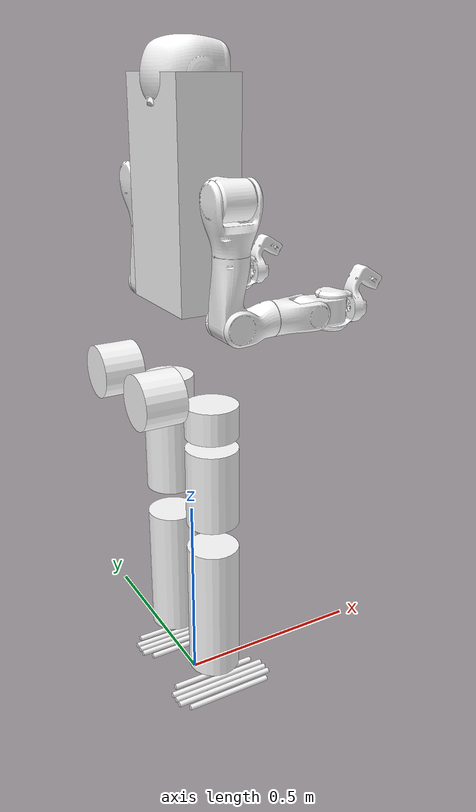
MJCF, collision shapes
<mujoco model="LingLong_L1_V1.4">
  <!-- Generated from the version-matched URDF with MuJoCo 3.4.0, then supplemented for the SDK runtime. -->
  <compiler angle="radian" meshdir="../meshes/"/>

  <!-- Runtime control periods are configured by the application YAML. -->
  <option timestep="0.001"/>

  <!--
    Joint armatures match the installed motor models. Foot-contact parameters
    remain aligned with the training model, and actuator force limits match
    config/linglong_hardware.yaml.
  -->

  <default>
    <geom group="3"/>
  </default>

  <asset>
    <mesh name="base_link" file="base_link.stl"/>
    <mesh name="left_hip_pitch_link" file="left_hip_pitch_link.STL"/>
    <mesh name="left_hip_roll_link" file="left_hip_roll_link.STL"/>
    <mesh name="left_hip_yaw_link" file="left_hip_yaw_link.STL"/>
    <mesh name="left_knee_link" file="left_knee_link.STL"/>
    <mesh name="left_ankle_pitch_link" file="left_ankle_pitch_link.STL"/>
    <mesh name="left_ankle_roll_link" file="left_ankle_roll_link.STL"/>
    <mesh name="right_hip_pitch_link" file="right_hip_pitch_link.STL"/>
    <mesh name="right_hip_roll_link" file="right_hip_roll_link.STL"/>
    <mesh name="right_hip_yaw_link" file="right_hip_yaw_link.STL"/>
    <mesh name="right_knee_link" file="right_knee_link.STL"/>
    <mesh name="right_ankle_pitch_link" file="right_ankle_pitch_link.STL"/>
    <mesh name="right_ankle_roll_link" file="right_ankle_roll_link.STL"/>
    <mesh name="head_yaw_link" content_type="model/stl" file="head_yaw_link.STL"/>
    <mesh name="head_pitch_link" file="head_pitch_link.STL"/>
    <mesh name="left_shoulder_pitch_link" content_type="model/stl" file="left_shoulder_pitch_link.STL"/>
    <mesh name="left_shoulder_roll_link" content_type="model/stl" file="left_shoulder_roll_link.STL"/>
    <mesh name="left_shoulder_yaw_link" content_type="model/stl" file="left_shoulder_yaw_link.STL"/>
    <mesh name="left_elbow_link" content_type="model/stl" file="left_elbow_link.STL"/>
    <mesh name="left_wrist_roll_link" content_type="model/stl" file="left_wrist_roll_link.STL"/>
    <mesh name="left_wrist_pitch_link" content_type="model/stl" file="left_wrist_pitch_link.STL"/>
    <mesh name="left_wrist_yaw_link" content_type="model/stl" file="left_wrist_yaw_link.STL"/>
    <mesh name="right_shoulder_pitch_link" content_type="model/stl" file="right_shoulder_pitch_link.STL"/>
    <mesh name="right_shoulder_roll_link" content_type="model/stl" file="right_shoulder_roll_link.STL"/>
    <mesh name="right_shoulder_yaw_link" content_type="model/stl" file="right_shoulder_yaw_link.STL"/>
    <mesh name="right_elbow_link" content_type="model/stl" file="right_elbow_link.STL"/>
    <mesh name="right_wrist_roll_link" content_type="model/stl" file="right_wrist_roll_link.STL"/>
    <mesh name="right_wrist_pitch_link" content_type="model/stl" file="right_wrist_pitch_link.STL"/>
    <mesh name="right_wrist_yaw_link" content_type="model/stl" file="right_wrist_yaw_link.STL"/>
  </asset>

  <worldbody>
    <body name="base_link" pos="0 0 1.0">
      <inertial pos="-0.004943 0.003037 0.104651" quat="0.999889 -0.000412984 -0.0138862 -0.0053236" mass="20.6804" diaginertia="0.651816 0.509434 0.232097"/>
      <joint name="floating_base_joint" type="free"/>
      <geom type="mesh" contype="0" conaffinity="0" group="1" density="0" rgba="1 1 1 1" mesh="base_link"/>
      <geom size="0.075 0.125 0.25" pos="0 0 0.3" type="box" rgba="1 1 1 1"/>
      <body name="left_hip_pitch_link" pos="0 0.11655 -0.077">
        <inertial pos="-0.084164 0.017857 -0.033361" quat="0.598881 0.223776 0.593448 0.488963" mass="2.80157" diaginertia="0.0184164 0.0164788 0.00698685"/>
        <joint name="left_hip_pitch_joint" pos="0 0 0" axis="0 1 0" range="-1.5708 0.785398" actuatorfrcrange="-330 330" armature="0.125601507333"/>
        <geom type="mesh" contype="0" conaffinity="0" group="1" density="0" rgba="1 1 1 1" mesh="left_hip_pitch_link"/>
        <geom size="0.065 0.05" pos="-0.14 0 -0.05" quat="0.707388 0 0.706825 0" type="cylinder" rgba="1 1 1 1"/>
        <body name="left_hip_roll_link" pos="0 0 -0.05">
          <inertial pos="-0.002128 -7.9e-05 -0.088996" quat="0.450855 0.545899 0.52601 0.471208" mass="2.0916" diaginertia="0.00765753 0.00735295 0.00392751"/>
          <joint name="left_hip_roll_joint" pos="0 0 0" axis="1 0 0" range="-0.349066 0.785398" actuatorfrcrange="-150 150" armature="0.127606"/>
          <geom type="mesh" contype="0" conaffinity="0" group="1" density="0" rgba="1 1 1 1" mesh="left_hip_roll_link"/>
          <geom size="0.065 0.04" pos="0 0 -0.08" type="cylinder" rgba="1 1 1 1"/>
          <body name="left_hip_yaw_link">
            <inertial pos="0.003857 -0.00632 -0.285854" quat="0.724164 -0.0100522 0.0138246 0.689416" mass="3.91508" diaginertia="0.0368522 0.036 0.00846585"/>
            <joint name="left_hip_yaw_joint" pos="0 0 0" axis="0 0 1" range="-2.0944 2.13803" actuatorfrcrange="-130 130" armature="0.062599"/>
            <geom type="mesh" contype="0" conaffinity="0" group="1" density="0" rgba="1 1 1 1" mesh="left_hip_yaw_link"/>
            <geom size="0.065 0.1" pos="0 0 -0.25" type="cylinder" rgba="1 1 1 1"/>
            <body name="left_knee_link" pos="0 0 -0.364">
              <inertial pos="0.002587 -0.000876 -0.181945" quat="0.704682 0.0194667 -0.0213112 0.708935" mass="4.14246" diaginertia="0.047775 0.0463692 0.00748385"/>
              <joint name="left_knee_joint" pos="0 0 0" axis="0 1 0" range="-0.174533 1.90241" actuatorfrcrange="-150 150" armature="0.1606514"/>
              <geom type="mesh" contype="0" conaffinity="0" group="1" density="0" rgba="1 1 1 1" mesh="left_knee_link"/>
              <geom size="0.065 0.175" pos="0 0 -0.24" type="cylinder" rgba="1 1 1 1"/>
              <body name="left_ankle_pitch_link" pos="0 0 -0.42">
                <inertial pos="-0.000216 0 0" quat="0 0.707107 0 0.707107" mass="0.139668" diaginertia="5.6e-05 3.1e-05 2.9e-05"/>
                <joint name="left_ankle_pitch_joint" pos="0 0 0" axis="0 1 0" range="-0.802851 0.602139" actuatorfrcrange="-90 90" armature="0.037744539344"/>
                <geom type="mesh" contype="0" conaffinity="0" group="1" density="0" rgba="1 1 1 1" mesh="left_ankle_pitch_link"/>
                <body name="left_ankle_roll_link">
                  <inertial pos="0.008646 4.5e-05 -0.044395" quat="-0.000247978 0.725518 2.51124e-05 0.688203" mass="1.10301" diaginertia="0.00639506 0.006049 0.000984944"/>
                  <joint name="left_ankle_roll_joint" pos="0 0 0" axis="1 0 0" range="-0.523599 0.523599" actuatorfrcrange="-90 90" armature="0.037744539344"/>
                  <geom type="mesh" contype="0" conaffinity="0" group="1" density="0" rgba="1 1 1 1" mesh="left_ankle_roll_link"/>
                  <geom name="left_foot1_collision" size="0.007 0.135" pos="0.02 0 -0.07" quat="0.707105 0 -0.707108 0" type="cylinder" rgba="1 1 1 1" condim="3" priority="1" friction="0.6 0.005 0.0001"/>
                  <geom name="left_foot2_collision" size="0.007 0.115" pos="0.02 -0.044 -0.07" quat="0.707105 0 -0.707108 0" type="cylinder" rgba="1 1 1 1" condim="3" priority="1" friction="0.6 0.005 0.0001"/>
                  <geom name="left_foot3_collision" size="0.007 0.115" pos="0.02 0.044 -0.07" quat="0.707105 0 -0.707108 0" type="cylinder" rgba="1 1 1 1" condim="3" priority="1" friction="0.6 0.005 0.0001"/>
                  <geom name="left_foot4_collision" size="0.007 0.135" pos="0.02 -0.02 -0.07" quat="0.707105 0 -0.707108 0" type="cylinder" rgba="1 1 1 1" condim="3" priority="1" friction="0.6 0.005 0.0001"/>
                  <geom name="left_foot5_collision" size="0.007 0.135" pos="0.02 0.02 -0.07" quat="0.707105 0 -0.707108 0" type="cylinder" rgba="1 1 1 1" condim="3" priority="1" friction="0.6 0.005 0.0001"/>
                </body>
              </body>
            </body>
          </body>
        </body>
      </body>
      <body name="right_hip_pitch_link" pos="0 -0.11655 -0.077">
        <inertial pos="-0.084164 -0.017857 -0.033361" quat="0.488963 0.593448 0.223776 0.598881" mass="2.80157" diaginertia="0.0184164 0.0164788 0.00698685"/>
        <joint name="right_hip_pitch_joint" pos="0 0 0" axis="0 1 0" range="-1.5708 0.785398" actuatorfrcrange="-330 330" armature="0.125601507333"/>
        <geom type="mesh" contype="0" conaffinity="0" group="1" density="0" rgba="1 1 1 1" mesh="right_hip_pitch_link"/>
        <geom size="0.065 0.05" pos="-0.14 0 -0.05" quat="0.707388 0 0.706825 0" type="cylinder" rgba="1 1 1 1"/>
        <body name="right_hip_roll_link" pos="0 0 -0.05">
          <inertial pos="-0.002128 -7.9e-05 -0.088996" quat="0.471208 0.52601 0.545899 0.450855" mass="2.0916" diaginertia="0.00765753 0.00735295 0.00392751"/>
          <joint name="right_hip_roll_joint" pos="0 0 0" axis="1 0 0" range="-0.785398 0.349066" actuatorfrcrange="-150 150" armature="0.127606"/>
          <geom type="mesh" contype="0" conaffinity="0" group="1" density="0" rgba="1 1 1 1" mesh="right_hip_roll_link"/>
          <geom size="0.065 0.04" pos="0 0 -0.08" type="cylinder" rgba="1 1 1 1"/>
          <body name="right_hip_yaw_link">
            <inertial pos="0.003857 0.00632 -0.285854" quat="0.69435 0.00943215 -0.0142737 0.719434" mass="3.91508" diaginertia="0.0368512 0.036001 0.00846582"/>
            <joint name="right_hip_yaw_joint" pos="0 0 0" axis="0 0 1" range="-2.13803 2.0944" actuatorfrcrange="-130 130" armature="0.062599"/>
            <geom type="mesh" contype="0" conaffinity="0" group="1" density="0" rgba="1 1 1 1" mesh="right_hip_yaw_link"/>
            <geom size="0.065 0.1" pos="0 0 -0.25" type="cylinder" rgba="1 1 1 1"/>
            <body name="right_knee_link" pos="0 0 -0.364">
              <inertial pos="0.002587 0.000876 -0.181945" quat="0.708935 -0.0213112 0.0194667 0.704682" mass="4.14246" diaginertia="0.047775 0.0463692 0.00748385"/>
              <joint name="right_knee_joint" pos="0 0 0" axis="0 1 0" range="-0.174533 1.90241" actuatorfrcrange="-150 150" armature="0.1606514"/>
              <geom type="mesh" contype="0" conaffinity="0" group="1" density="0" rgba="1 1 1 1" mesh="right_knee_link"/>
              <geom size="0.065 0.175" pos="0 0 -0.23" type="cylinder" rgba="1 1 1 1"/>
              <body name="right_ankle_pitch_link" pos="0 0 -0.42">
                <inertial pos="-0.000216 0 0" quat="0 0.707107 0 0.707107" mass="0.139668" diaginertia="5.6e-05 3.1e-05 2.9e-05"/>
                <joint name="right_ankle_pitch_joint" pos="0 0 0" axis="0 1 0" range="-0.802851 0.602139" actuatorfrcrange="-90 90" armature="0.037744539344"/>
                <geom type="mesh" contype="0" conaffinity="0" group="1" density="0" rgba="1 1 1 1" mesh="right_ankle_pitch_link"/>
                <body name="right_ankle_roll_link">
                  <inertial pos="0.008646 -4.5e-05 -0.044395" quat="0.000247978 0.725518 -2.51124e-05 0.688203" mass="1.10301" diaginertia="0.00639506 0.006049 0.000984944"/>
                  <joint name="right_ankle_roll_joint" pos="0 0 0" axis="1 0 0" range="-0.523599 0.523599" actuatorfrcrange="-90 90" armature="0.037744539344"/>
                  <geom type="mesh" contype="0" conaffinity="0" group="1" density="0" rgba="1 1 1 1" mesh="right_ankle_roll_link"/>
                  <geom name="right_foot1_collision" size="0.007 0.135" pos="0.02 0 -0.07" quat="0.707105 0 -0.707108 0" type="cylinder" rgba="1 1 1 1" condim="3" priority="1" friction="0.6 0.005 0.0001"/>
                  <geom name="right_foot2_collision" size="0.007 0.115" pos="0.02 -0.044 -0.07" quat="0.707105 0 -0.707108 0" type="cylinder" rgba="1 1 1 1" condim="3" priority="1" friction="0.6 0.005 0.0001"/>
                  <geom name="right_foot3_collision" size="0.007 0.115" pos="0.02 0.044 -0.07" quat="0.707105 0 -0.707108 0" type="cylinder" rgba="1 1 1 1" condim="3" priority="1" friction="0.6 0.005 0.0001"/>
                  <geom name="right_foot4_collision" size="0.007 0.135" pos="0.02 -0.02 -0.07" quat="0.707105 0 -0.707108 0" type="cylinder" rgba="1 1 1 1" condim="3" priority="1" friction="0.6 0.005 0.0001"/>
                  <geom name="right_foot5_collision" size="0.007 0.135" pos="0.02 0.02 -0.07" quat="0.707105 0 -0.707108 0" type="cylinder" rgba="1 1 1 1" condim="3" priority="1" friction="0.6 0.005 0.0001"/>
                </body>
              </body>
            </body>
          </body>
        </body>
      </body>
      <body name="head_yaw_link" pos="0 0 0.4168">
        <inertial pos="-1.8e-05 0.003948 -0.004408" quat="0.466869 0.883905 0.0130707 -0.023959" mass="0.518638" diaginertia="0.000252219 0.000179463 0.000177318"/>
        <joint name="head_yaw_joint" pos="0 0 0" axis="0 0 1" range="-1.5708 1.5708" actuatorfrcrange="-27 27" armature="0.0018"/>
        <geom type="mesh" contype="0" conaffinity="0" group="1" density="0" rgba="1 1 1 1" mesh="head_yaw_link"/>
        <geom type="mesh" rgba="1 1 1 1" mesh="head_yaw_link"/>
        <body name="head_pitch_link">
          <inertial pos="0.00952 -0.000338 0.108918" quat="0.973673 0.106966 0.198224 -0.0350127" mass="1.20264" diaginertia="0.00689685 0.00580594 0.00522521"/>
          <joint name="head_pitch_joint" pos="0 0 0" axis="0 1 0" range="-0.785398 0.785398" actuatorfrcrange="-27 27" armature="0.0018"/>
          <geom type="mesh" contype="0" conaffinity="0" group="1" density="0" rgba="1 1 1 1" mesh="head_pitch_link"/>
          <geom type="mesh" rgba="1 1 1 1" mesh="head_pitch_link"/>
        </body>
      </body>
      <body name="left_shoulder_pitch_link" pos="0 0.21175 0.309">
        <inertial pos="-0.005683 -0.007852 7.2e-05" quat="0.690719 0.716915 0.035467 -0.0876488" mass="1.13233" diaginertia="0.00106325 0.00104987 0.000747878"/>
        <joint name="left_shoulder_pitch_joint" pos="0 0 0" axis="0 1 0" range="-2.96706 2.96706" actuatorfrcrange="-97 97" armature="0.13718869333333336"/>
        <geom type="mesh" contype="0" conaffinity="0" group="1" density="0" rgba="1 1 1 1" mesh="left_shoulder_pitch_link"/>
        <geom type="mesh" rgba="1 1 1 1" mesh="left_shoulder_pitch_link"/>
        <body name="left_shoulder_roll_link">
          <inertial pos="-0.001957 0 -0.059713" quat="0.706173 -0.0363325 -0.0363325 0.706173" mass="0.893031" diaginertia="0.002027 0.00163878 0.00109022"/>
          <joint name="left_shoulder_roll_joint" pos="0 0 0" axis="1 0 0" range="-0.0872665 3.05433" actuatorfrcrange="-97 97" armature="0.13718869333333336"/>
          <geom type="mesh" contype="0" conaffinity="0" group="1" density="0" rgba="1 1 1 1" mesh="left_shoulder_roll_link"/>
          <geom type="mesh" rgba="1 1 1 1" mesh="left_shoulder_roll_link"/>
          <body name="left_shoulder_yaw_link">
            <inertial pos="-0.004186 -0.002151 -0.22343" quat="0.959028 -0.00419165 -0.0329792 -0.281354" mass="0.958875" diaginertia="0.00345777 0.00345237 0.000708862"/>
            <joint name="left_shoulder_yaw_joint" pos="0 0 0" axis="0 0 1" range="-2.96706 2.96706" actuatorfrcrange="-27 27" armature="0.032"/>
            <geom type="mesh" contype="0" conaffinity="0" group="1" density="0" rgba="1 1 1 1" mesh="left_shoulder_yaw_link"/>
            <geom type="mesh" rgba="1 1 1 1" mesh="left_shoulder_yaw_link"/>
            <body name="left_elbow_link" pos="5e-05 0 -0.26">
              <inertial pos="0.042253 -0.001579 -0.003042" quat="0.000636661 0.710195 0.00773058 0.703962" mass="0.422895" diaginertia="0.00109807 0.000846985 0.000643945"/>
              <joint name="left_elbow_joint" pos="0 0 0" axis="0 1 0" range="-0.785398 1.5708" actuatorfrcrange="-27 27" armature="0.032"/>
              <geom type="mesh" contype="0" conaffinity="0" group="1" density="0" rgba="1 1 1 1" mesh="left_elbow_link"/>
              <geom type="mesh" rgba="1 1 1 1" mesh="left_elbow_link"/>
              <body name="left_wrist_roll_link" pos="0.198 0 0">
                <inertial pos="-0.054086 -0.001143 3e-05" quat="0.0207748 0.706802 -0.0207748 0.706802" mass="0.699632" diaginertia="0.001133 0.000952941 0.000680059"/>
                <joint name="left_wrist_roll_joint" pos="0 0 0" axis="1 0 0" range="-2.96706 2.96706" actuatorfrcrange="-7 7" armature="0.0018"/>
                <geom type="mesh" contype="0" conaffinity="0" group="1" density="0" rgba="1 1 1 1" mesh="left_wrist_roll_link"/>
                <geom type="mesh" rgba="1 1 1 1" mesh="left_wrist_roll_link"/>
                <body name="left_wrist_pitch_link">
                  <inertial pos="0.030943 -0.00073 0.001059" quat="0.536476 0.445315 0.538992 0.472627" mass="0.975584" diaginertia="0.00143392 0.00143136 0.000580719"/>
                  <joint name="left_wrist_pitch_joint" pos="0 0 0" axis="0 1 0" range="-1.39626 1.39626" actuatorfrcrange="-7 7" armature="0.0018"/>
                  <geom type="mesh" contype="0" conaffinity="0" group="1" density="0" rgba="1 1 1 1" mesh="left_wrist_pitch_link"/>
                  <geom type="mesh" rgba="1 1 1 1" mesh="left_wrist_pitch_link"/>
                  <body name="left_wrist_yaw_link" pos="0.062 0 0">
                    <inertial pos="0.039714 6e-06 0.012519" quat="0.653681 0.269631 0.269631 0.653681" mass="0.398372" diaginertia="0.000947 0.000802003 0.000463997"/>
                    <joint name="left_wrist_yaw_joint" pos="0 0 0" axis="0 0 1" range="-1.39626 1.39626" actuatorfrcrange="-7 7" armature="0.0018"/>
                    <geom type="mesh" contype="0" conaffinity="0" group="1" density="0" rgba="1 1 1 1" mesh="left_wrist_yaw_link"/>
                    <geom type="mesh" rgba="1 1 1 1" mesh="left_wrist_yaw_link"/>
                  </body>
                </body>
              </body>
            </body>
          </body>
        </body>
      </body>
      <body name="right_shoulder_pitch_link" pos="0 -0.21175 0.309">
        <inertial pos="-0.005683 0.007852 7.2e-05" quat="0.716915 0.690719 0.0876488 -0.035467" mass="1.13233" diaginertia="0.00106325 0.00104987 0.000747878"/>
        <joint name="right_shoulder_pitch_joint" pos="0 0 0" axis="0 1 0" range="-2.96706 2.96706" actuatorfrcrange="-97 97" armature="0.13718869333333336"/>
        <geom type="mesh" contype="0" conaffinity="0" group="1" density="0" rgba="1 1 1 1" mesh="right_shoulder_pitch_link"/>
        <geom type="mesh" rgba="1 1 1 1" mesh="right_shoulder_pitch_link"/>
        <body name="right_shoulder_roll_link">
          <inertial pos="-0.001957 0 -0.059713" quat="0.706173 -0.0363325 -0.0363325 0.706173" mass="0.893031" diaginertia="0.002027 0.00163878 0.00109022"/>
          <joint name="right_shoulder_roll_joint" pos="0 0 0" axis="1 0 0" range="-3.05433 0.0872665" actuatorfrcrange="-97 97" armature="0.13718869333333336"/>
          <geom type="mesh" contype="0" conaffinity="0" group="1" density="0" rgba="1 1 1 1" mesh="right_shoulder_roll_link"/>
          <geom type="mesh" rgba="1 1 1 1" mesh="right_shoulder_roll_link"/>
          <body name="right_shoulder_yaw_link">
            <inertial pos="-0.004186 0.002151 -0.22343" quat="0.959028 0.00419165 -0.0329792 0.281354" mass="0.958875" diaginertia="0.00345777 0.00345237 0.000708862"/>
            <joint name="right_shoulder_yaw_joint" pos="0 0 0" axis="0 0 1" range="-2.96706 2.96706" actuatorfrcrange="-27 27" armature="0.032"/>
            <geom type="mesh" contype="0" conaffinity="0" group="1" density="0" rgba="1 1 1 1" mesh="right_shoulder_yaw_link"/>
            <geom type="mesh" rgba="1 1 1 1" mesh="right_shoulder_yaw_link"/>
            <body name="right_elbow_link" pos="0 0 -0.26">
              <inertial pos="0.042253 0.001579 -0.003042" quat="-0.000636661 0.710195 -0.00773058 0.703962" mass="0.422895" diaginertia="0.00109807 0.000846985 0.000643945"/>
              <joint name="right_elbow_joint" pos="0 0 0" axis="0 1 0" range="-0.785398 1.5708" actuatorfrcrange="-27 27" armature="0.032"/>
              <geom type="mesh" contype="0" conaffinity="0" group="1" density="0" rgba="1 1 1 1" mesh="right_elbow_link"/>
              <geom type="mesh" rgba="1 1 1 1" mesh="right_elbow_link"/>
              <body name="right_wrist_roll_link" pos="0.198 0 0">
                <inertial pos="-0.054086 0.001143 3e-05" quat="-0.0207748 0.706802 0.0207748 0.706802" mass="0.699632" diaginertia="0.001133 0.000952941 0.000680059"/>
                <joint name="right_wrist_roll_joint" pos="0 0 0" axis="1 0 0" range="-2.96706 2.96706" actuatorfrcrange="-7 7" armature="0.0018"/>
                <geom type="mesh" contype="0" conaffinity="0" group="1" density="0" rgba="1 1 1 1" mesh="right_wrist_roll_link"/>
                <geom type="mesh" rgba="1 1 1 1" mesh="right_wrist_roll_link"/>
                <body name="right_wrist_pitch_link">
                  <inertial pos="0.030943 0.00073 0.001059" quat="0.472627 0.538992 0.445315 0.536476" mass="0.975584" diaginertia="0.00143392 0.00143136 0.000580719"/>
                  <joint name="right_wrist_pitch_joint" pos="0 0 0" axis="0 1 0" range="-1.39626 1.39626" actuatorfrcrange="-7 7" armature="0.0018"/>
                  <geom type="mesh" contype="0" conaffinity="0" group="1" density="0" rgba="1 1 1 1" mesh="right_wrist_pitch_link"/>
                  <geom type="mesh" rgba="1 1 1 1" mesh="right_wrist_pitch_link"/>
                  <body name="right_wrist_yaw_link" pos="0.062 0 0">
                    <inertial pos="0.039714 6e-06 0.012519" quat="0.653681 0.269631 0.269631 0.653681" mass="0.398372" diaginertia="0.000947 0.000802003 0.000463997"/>
                    <joint name="right_wrist_yaw_joint" pos="0 0 0" axis="0 0 1" range="-1.39626 1.39626" actuatorfrcrange="-7 7" armature="0.0018"/>
                    <geom type="mesh" contype="0" conaffinity="0" group="1" density="0" rgba="1 1 1 1" mesh="right_wrist_yaw_link"/>
                    <geom type="mesh" rgba="1 1 1 1" mesh="right_wrist_yaw_link"/>
                  </body>
                </body>
              </body>
            </body>
          </body>
        </body>
      </body>
    </body>
  </worldbody>

  <!-- Source collision proxies overlap at the zero pose. -->
  <contact>
    <exclude body1="base_link" body2="head_pitch_link"/>
    <exclude body1="left_wrist_roll_link" body2="left_wrist_yaw_link"/>
    <exclude body1="right_wrist_roll_link" body2="right_wrist_yaw_link"/>
  </contact>

  <!-- SDK/URDF actuator order: legs 12, head 2, arms 14. -->
  <actuator>
    <motor name="left_hip_pitch_joint" joint="left_hip_pitch_joint" forcerange="-300 300"/>
    <motor name="left_hip_roll_joint" joint="left_hip_roll_joint" forcerange="-150 150"/>
    <motor name="left_hip_yaw_joint" joint="left_hip_yaw_joint" forcerange="-130 130"/>
    <motor name="left_knee_joint" joint="left_knee_joint" forcerange="-150 150"/>
    <motor name="left_ankle_pitch_joint" joint="left_ankle_pitch_joint" forcerange="-90 90"/>
    <motor name="left_ankle_roll_joint" joint="left_ankle_roll_joint" forcerange="-90 90"/>
    <motor name="right_hip_pitch_joint" joint="right_hip_pitch_joint" forcerange="-300 300"/>
    <motor name="right_hip_roll_joint" joint="right_hip_roll_joint" forcerange="-150 150"/>
    <motor name="right_hip_yaw_joint" joint="right_hip_yaw_joint" forcerange="-130 130"/>
    <motor name="right_knee_joint" joint="right_knee_joint" forcerange="-150 150"/>
    <motor name="right_ankle_pitch_joint" joint="right_ankle_pitch_joint" forcerange="-90 90"/>
    <motor name="right_ankle_roll_joint" joint="right_ankle_roll_joint" forcerange="-90 90"/>
    <motor name="head_yaw_joint" joint="head_yaw_joint" forcerange="-10 10"/>
    <motor name="head_pitch_joint" joint="head_pitch_joint" forcerange="-10 10"/>
    <motor name="left_shoulder_pitch_joint" joint="left_shoulder_pitch_joint" forcerange="-75 75"/>
    <motor name="left_shoulder_roll_joint" joint="left_shoulder_roll_joint" forcerange="-80 80"/>
    <motor name="left_shoulder_yaw_joint" joint="left_shoulder_yaw_joint" forcerange="-27 27"/>
    <motor name="left_elbow_joint" joint="left_elbow_joint" forcerange="-27 27"/>
    <motor name="left_wrist_roll_joint" joint="left_wrist_roll_joint" forcerange="-7 7"/>
    <motor name="left_wrist_pitch_joint" joint="left_wrist_pitch_joint" forcerange="-7 7"/>
    <motor name="left_wrist_yaw_joint" joint="left_wrist_yaw_joint" forcerange="-7 7"/>
    <motor name="right_shoulder_pitch_joint" joint="right_shoulder_pitch_joint" forcerange="-75 75"/>
    <motor name="right_shoulder_roll_joint" joint="right_shoulder_roll_joint" forcerange="-80 80"/>
    <motor name="right_shoulder_yaw_joint" joint="right_shoulder_yaw_joint" forcerange="-27 27"/>
    <motor name="right_elbow_joint" joint="right_elbow_joint" forcerange="-27 27"/>
    <motor name="right_wrist_roll_joint" joint="right_wrist_roll_joint" forcerange="-7 7"/>
    <motor name="right_wrist_pitch_joint" joint="right_wrist_pitch_joint" forcerange="-7 7"/>
    <motor name="right_wrist_yaw_joint" joint="right_wrist_yaw_joint" forcerange="-7 7"/>
  </actuator>

</mujoco>
